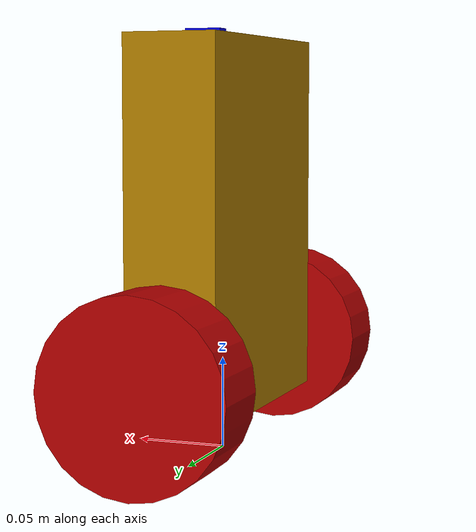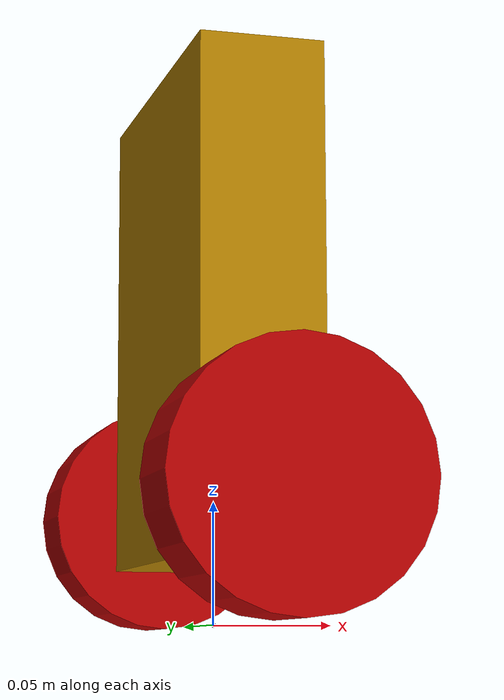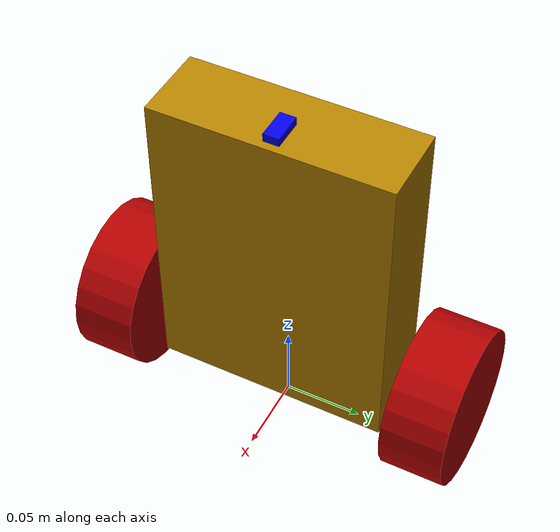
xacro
<!-- robotx.xacro 用于引用所有将要用到的文件 -->
<!-- 本文件中的robot包含传感器和控制器 -->
<!-- robot2.xacro 使用robot2.launch启动 -->
<robot name="robot_wip" xmlns:xacro="http://wiki.ros.org/xacro">
    <xacro:include filename="inertial.xacro" />
    <xacro:include filename="wip.xacro" />
    <!-- 在定义了wip.xacro 当中的连杆和关节之后，才能绑定对应的控制器和传感器 -->
    <xacro:include filename="actuators.xacro" />
    <xacro:include filename="sensors.xacro" />
</robot>

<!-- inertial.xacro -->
<!-- 文档说明：本xacro文件负责为常见的图形：球形、圆柱体、长方体  沿着xyz方向给参数，创建惯性参数信息 -->
<robot name="inertial" xmlns:xacro="http://wiki.ros.org/xacro">
    <!-- Macro for inertia matrix -->
    <xacro:macro name="sphere_inertial_matrix" params="m r">
        <inertial>
            <mass value="${m}" />
            <inertia ixx="${2*m*r*r/5}" ixy="0" ixz="0"
                iyy="${2*m*r*r/5}" iyz="0"
                izz="${2*m*r*r/5}" />
        </inertial>
    </xacro:macro>

    <xacro:macro name="cylinder_inertial_matrix" params="m r h">
        <inertial>
            <mass value="${m}" />
            <inertia ixx="${m*(3*r*r+h*h)/12}" ixy = "0" ixz = "0"
                iyy="${m*(3*r*r+h*h)/12}" iyz = "0"
                izz="${m*r*r/2}" />
        </inertial>
    </xacro:macro>

    <xacro:macro name="Box_inertial_matrix" params="m l w h">
    <!-- 这个转动惯量的计算是不是有点问题... ... -->
       <inertial>
               <mass value="${m}" />
               <inertia ixx="${m*(h*h + l*l)/12}" ixy = "0" ixz = "0"
                   iyy="${m*(w*w + l*l)/12}" iyz= "0"
                   izz="${m*(w*w + h*h)/12}" />
       </inertial>
   </xacro:macro>
</robot>

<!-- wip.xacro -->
<robot name="wip" xmlns:xacro="http://wiki.ros.org/xacro">
    <xacro:property name = "p1" value = "1"/>
    <!-- 没什么用，只是ZZW非得自己手动敲一次，满足他的愿望。 -->
    <xacro:property name = "pi" value ="3.1415927" />
    <!-- params for base -->
    <xacro:property name = "base_l" value ="0.15" />
    <xacro:property name = "base_w" value ="0.05" />
    <xacro:property name = "base_h" value ="0.2" />
    <xacro:property name = "base_m" value ="0.8" />

    <xacro:property name = "wheel_l" value ="0.04" />
    <xacro:property name = "wheel_r" value ="0.05" />
    <xacro:property name = "wheel_m" value ="0.2" />
    <xacro:property name = "imu_m" value = "0.005" />

    <xacro:property name = "imu_x" value = "0.02" />
    <xacro:property name = "imu_y" value = "0.01" />
    <xacro:property name = "imu_z" value = "0.005" />

<!-- link1 footprint -->
<!-- 用途就是载入模型的时候将这个设定为远点位置 -->
<!-- 不过实际上在launch当中使用 spwan model时，将参数 -z 调成一个适当的值也可以，自由落体一小会儿不影响 -->
    <link name="base_footprint">
        <visual>
            <geometry>
                <sphere radius="0.001" />
            </geometry>
        </visual>
    </link>

<!-- link2 basement -->
    <link name="base_link">
        <visual>
            <geometry>
                <box size="${base_w} ${base_l} ${base_h}" />
            </geometry>
            <material name="black">
                <color rgba="0.7 0.5 0 1" />
            </material>
        </visual>
        <collision>
            <geometry>
                <box size="${base_w} ${base_l} ${base_h}" />
            </geometry>
            <origin xyz="0.0 0.0 0.0" rpy="0.0 0.0 0.0" />
        </collision>
        <xacro:Box_inertial_matrix m="${base_m}" l="${base_w}" w="${base_l}" h="${base_h}" />
    </link>

<!-- 左轮 -->
    <link name = "leftwheel">
        <visual>
            <geometry>
                <cylinder radius="${wheel_r}" length="${wheel_l}" />
            </geometry>
            <material name="red">
                <color rgba="0.7 0.0 0 1" />
            </material>
            <origin xyz="0.0 0.0 0.0" rpy="${pi/2} 0.0 0.0" />
        </visual>
        <collision>
          <geometry>
            <cylinder radius="${wheel_r}" length="${wheel_l}" />
          </geometry>
          <origin xyz="0.0 0.0 0.0" rpy="${pi/2} 0.0 0.0" />
        </collision>
        <xacro:cylinder_inertial_matrix m="${wheel_m}" r="${wheel_r}" h="${wheel_l}" />
    </link>

<!-- Right Wheel -->
    <link name = "rightwheel">
        <visual>
            <geometry>
                <cylinder radius="${wheel_r}" length="${wheel_l}" />
            </geometry>
            <material name="red">
                <color rgba="0.7 0.0 0 1" />
            </material>
            <origin xyz="0.0 0.0 0.0" rpy="${pi/2} 0.0 0.0" />
        </visual>

        <collision>
          <geometry>
            <cylinder radius="${wheel_r}" length="${wheel_l}" />
          </geometry>
          <origin xyz="0.0 0.0 0.0" rpy="${pi/2} 0.0 0.0" />
        </collision>
        <xacro:cylinder_inertial_matrix m="${wheel_m}" r="${wheel_r}" h="${wheel_l}" />

    </link>

<!-- Imu Model -->
    <link name="imu_link">
        <visual>
            <geometry>
                <box size="${imu_x} ${imu_y} ${imu_z}" />
            </geometry>
            <origin xyz="${imu_x/2} 0.0 0.0" rpy="0.0 0.0 0.0" />
            <material name="blue">   <!-- In Gazebo , gazebo plugin will work, not this-->
                <color rgba="0.0 0.0 0.9 1" />
            </material>
        </visual>
        <collision>
            <geometry>
                <box size="${imu_x} ${imu_y} ${imu_z}" />
            </geometry>
            <origin xyz="${imu_x/2} 0.0 0.0" rpy="0.0 0.0 0.0" />
        </collision>
        <xacro:Box_inertial_matrix m="${imu_m}" l="${imu_x}" w="${imu_y}" h="${imu_z}" />
    </link>

<!-- Joints -->

<!-- Joint0 -->
    <joint name="base_link2base_footprint" type="fixed">
        <parent link="base_footprint" />
        <child link="base_link" />
        <origin xyz="0 0.0 0.125" />
    </joint>

    <joint name="Imu2Base_joint" type="fixed">
        <parent link="base_link" />
        <child link="imu_link" />
        <origin xyz="0 0 ${base_h/2 + imu_z/2 }" />
    </joint>

    <joint name="leftw2base" type="continuous">
        <parent link="base_link"/>
        <child link="leftwheel" />

        <origin xyz="0 0.105 -0.075 " />
        <axis xyz="0 1 0" />
    </joint>

    <joint name="rightw2base" type="continuous">
        <parent link="base_link"/>
        <child link="rightwheel" />

        <origin xyz="0 -0.105 -0.075 " />
        <axis xyz="0 1 0 " />
    </joint>

    <gazebo reference="base_footprint">
        <material>Gazebo/Black</material>
    </gazebo>

    <gazebo reference="base_link">
        <material>Gazebo/Yellow</material>
    </gazebo>

    <gazebo reference="leftwheel">
        <material>Gazebo/Red</material>
    </gazebo>

    <gazebo reference="rightwheel">
        <material>Gazebo/Red</material>
    </gazebo>

    <gazebo reference="imu_link">
        <material>Gazebo/Blue</material>
    </gazebo>

</robot>
